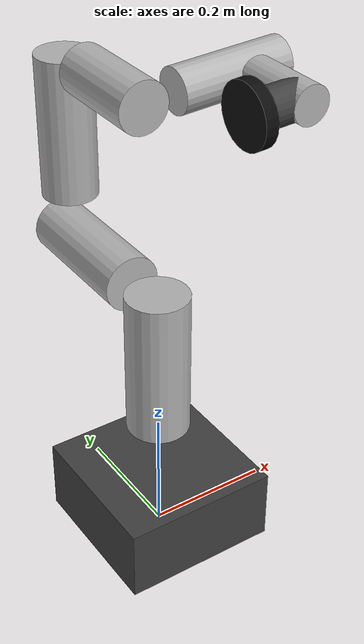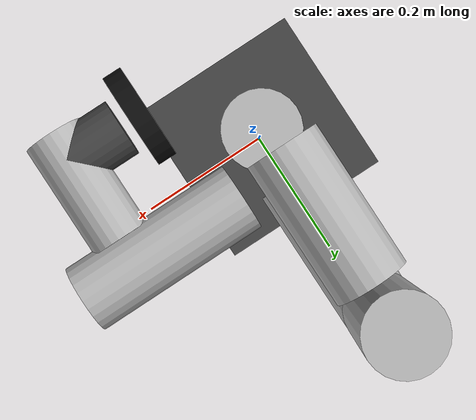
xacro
<?xml version="1.0"?>
<robot name="panda_primitive_pretty" xmlns:xacro="http://www.ros.org/wiki/xacro">

  <!-- Materials -->
  <material name="dark_grey"><color rgba="0.25 0.25 0.25 1"/></material>
  <material name="light_grey"><color rgba="0.7 0.7 0.7 1"/></material>
  <material name="black"><color rgba="0.05 0.05 0.05 1"/></material>

  <!-- WORLD -->
  <link name="world"/>
  <joint name="world_joint" type="fixed">
    <parent link="world"/>
    <child link="panda_link0"/>
    <origin xyz="0 0 0"/>
  </joint>

  <!-- BASE -->
  <link name="panda_link0">
    <visual>
      <geometry><box size="0.25 0.25 0.12"/></geometry>
      <origin xyz="0 0 0.06"/>
      <material name="dark_grey"/>
    </visual>
  </link>

  <!-- =============== MACROS =========================== -->

  <!-- Link -->
  <xacro:macro name="cyl_link" params="name r l m z mat">
    <link name="${name}">
      <visual>
        <geometry><cylinder radius="${r}" length="${l}"/></geometry>
        <origin xyz="0 0 ${z}"/>
        <material name="${mat}"/>
      </visual>
      <collision>
        <geometry><cylinder radius="${r}" length="${l}"/></geometry>
        <origin xyz="0 0 ${z}"/>
      </collision>
      <inertial>
        <mass value="${m}"/>
        <origin xyz="0 0 ${z}"/>
        <inertia ixx="0.01" iyy="0.01" izz="0.01"
                 ixy="0" ixz="0" iyz="0"/>
      </inertial>
    </link>
  </xacro:macro>

  <!-- Joint -->
  <xacro:macro name="rev_joint" params="n p c xyz rpy lo up">
    <joint name="${n}" type="revolute">
      <parent link="${p}"/>
      <child link="${c}"/>
      <origin xyz="${xyz}" rpy="${rpy}"/>
      <axis xyz="0 0 1"/>
      <limit lower="${lo}" upper="${up}" effort="50" velocity="2"/>
    </joint>
  </xacro:macro>

  <!-- Transmission -->
  <xacro:macro name="simple_trans" params="j">
    <transmission name="${j}_trans">
      <type>transmission_interface/SimpleTransmission</type>
      <joint name="${j}">
        <hardwareInterface>hardware_interface/PositionJointInterface</hardwareInterface>
      </joint>
      <actuator name="${j}_motor">
        <hardwareInterface>hardware_interface/PositionJointInterface</hardwareInterface>
        <mechanicalReduction>1</mechanicalReduction>
      </actuator>
    </transmission>
  </xacro:macro>

  <!-- ros2_control joint block -->
  <xacro:macro name="control_joint" params="j">
    <joint name="${j}">
      <command_interface name="position"/>
      <state_interface name="position"/>
      <state_interface name="velocity"/>
    </joint>
  </xacro:macro>

  <!-- LINKS -->

  <xacro:cyl_link name="panda_link1" r="0.05" l="0.24" m="4" z="0.20" mat="light_grey"/>
  <xacro:cyl_link name="panda_link2" r="0.045" l="0.22" m="3" z="0.18" mat="light_grey"/>
  <xacro:cyl_link name="panda_link3" r="0.045" l="0.23" m="2.5" z="0.19" mat="light_grey"/>
  <xacro:cyl_link name="panda_link4" r="0.04" l="0.16" m="2" z="0.14" mat="light_grey"/>
  <xacro:cyl_link name="panda_link5" r="0.035" l="0.18" m="1.5" z="0.15" mat="light_grey"/>
  <xacro:cyl_link name="panda_link6" r="0.03" l="0.12" m="1" z="0.09" mat="light_grey"/>
  <xacro:cyl_link name="panda_link7" r="0.03" l="0.06" m="0.8" z="0.03" mat="dark_grey"/>

  <!-- JOINTS -->

  <xacro:rev_joint n="panda_joint1" p="panda_link0" c="panda_link1" xyz="0 0 0.12" rpy="0 0 0" lo="-2.9" up="2.9"/>
  <xacro:rev_joint n="panda_joint2" p="panda_link1" c="panda_link2" xyz="0 0 0.30" rpy="-1.5708 0 0" lo="-1.7" up="1.7"/>
  <xacro:rev_joint n="panda_joint3" p="panda_link2" c="panda_link3" xyz="0 0 0.25" rpy="1.5708 0 0" lo="-2.9" up="2.9"/>
  <xacro:rev_joint n="panda_joint4" p="panda_link3" c="panda_link4" xyz="0 0 0.30" rpy="1.5708 0 0" lo="-3.0" up="-0.05"/>
  <xacro:rev_joint n="panda_joint5" p="panda_link4" c="panda_link5" xyz="0 0 0.20" rpy="-1.5708 0 0" lo="-2.9" up="2.9"/>
  <xacro:rev_joint n="panda_joint6" p="panda_link5" c="panda_link6" xyz="0 0 0.18" rpy="1.5708 0 0" lo="0.0" up="3.75"/>
  <xacro:rev_joint n="panda_joint7" p="panda_link6" c="panda_link7" xyz="0 0 0.12" rpy="1.5708 0 0" lo="-2.9" up="2.9"/>

  <!-- END EFFECTOR -->

  <link name="ee_flange">
    <visual>
      <geometry><cylinder radius="0.05" length="0.02"/></geometry>
      <material name="black"/>
    </visual>
  </link>

  <joint name="ee_fixed" type="fixed">
    <parent link="panda_link7"/>
    <child link="ee_flange"/>
    <origin xyz="0 0 0.08"/>
  </joint>

  <!-- TRANSMISSIONS (auto) -->

  <xacro:simple_trans j="panda_joint1"/>
  <xacro:simple_trans j="panda_joint2"/>
  <xacro:simple_trans j="panda_joint3"/>
  <xacro:simple_trans j="panda_joint4"/>
  <xacro:simple_trans j="panda_joint5"/>
  <xacro:simple_trans j="panda_joint6"/>
  <xacro:simple_trans j="panda_joint7"/>

  <!-- ROS2 CONTROL -->

  <ros2_control name="panda_ros2_control" type="system">
    <hardware>
      <plugin>gazebo_ros2_control/GazeboSystem</plugin>
    </hardware>

    <xacro:control_joint j="panda_joint1"/>
    <xacro:control_joint j="panda_joint2"/>
    <xacro:control_joint j="panda_joint3"/>
    <xacro:control_joint j="panda_joint4"/>
    <xacro:control_joint j="panda_joint5"/>
    <xacro:control_joint j="panda_joint6"/>
    <xacro:control_joint j="panda_joint7"/>
  </ros2_control>

</robot>
